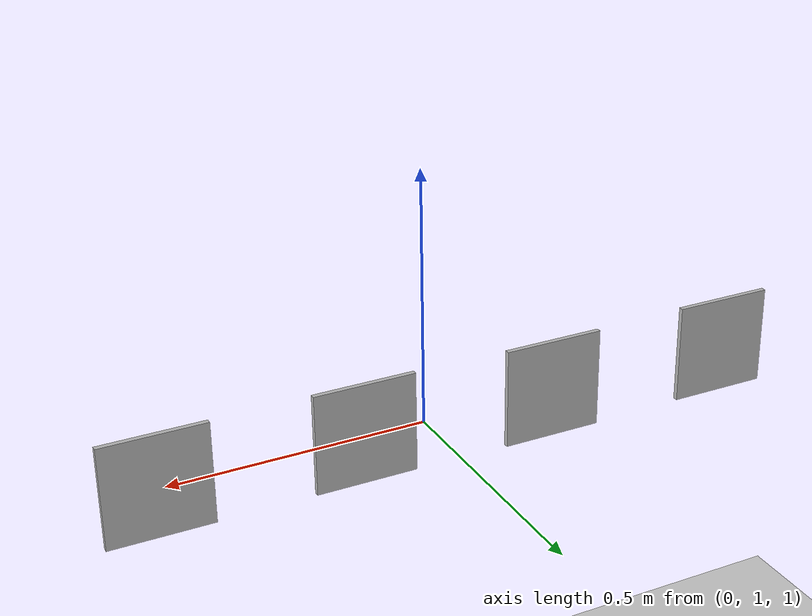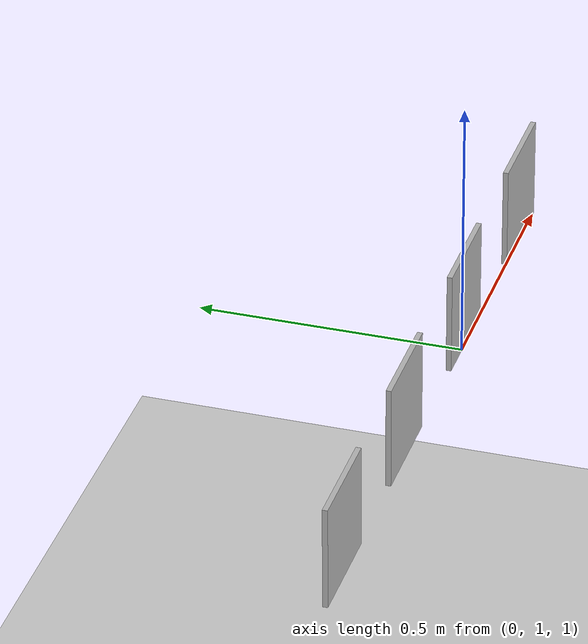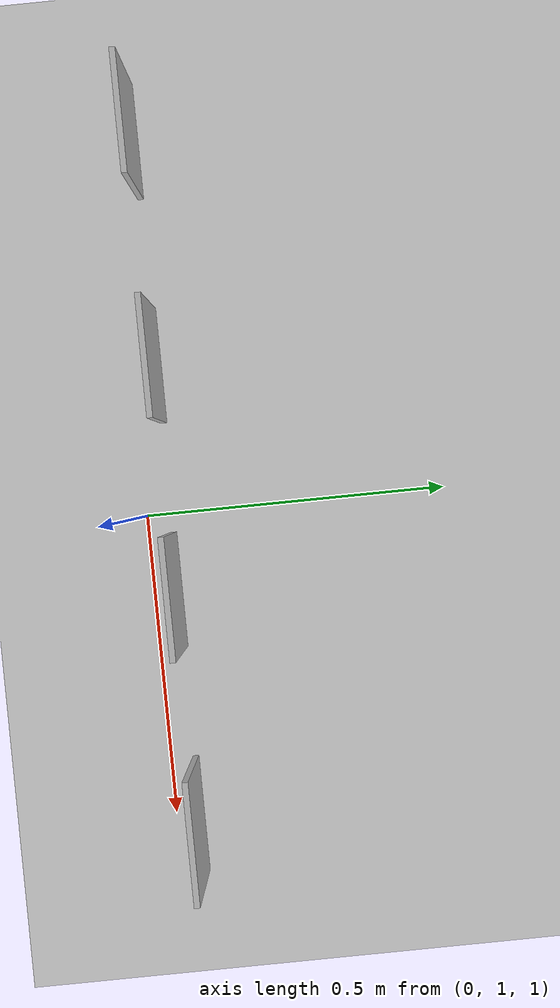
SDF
<sdf version="1.6">
 <world name="default">
  <light name="sun" type="directional">
   <pose>0 0 10 0 -0 0</pose>
   <diffuse>0.8 0.8 0.8 1</diffuse>
   <specular>0.2 0.2 0.2 1</specular>
   <attenuation>
    <range>1000</range>
    <constant>0.9</constant>
    <linear>0.01</linear>
    <quadratic>0.001</quadratic>
   </attenuation>
   <direction>-0.5 0.1 -0.9</direction>
  </light>
  <model name="ground_plane">
   <static>1</static>
   <link name="link">
    <collision name="collision">
     <geometry><plane><normal>0 0 1</normal><size>100 100</size></plane></geometry>
     <surface>
      <contact><collide_bitmask>65535</collide_bitmask></contact>
      <friction><ode><mu>100</mu><mu2>50</mu2></ode></friction>
     </surface>
    </collision>
    <visual name="visual">
     <cast_shadows>0</cast_shadows>
     <geometry><plane><normal>0 0 1</normal><size>100 100</size></plane></geometry>
     <material>
      <script><uri>file://media/materials/scripts/gazebo.material</uri><name>Gazebo/Grey</name></script>
     </material>
    </visual>
   </link>
  </model>
  <gravity>0 0 -9.8</gravity>
  <magnetic_field>6e-06 2.3e-05 -4.2e-05</magnetic_field>
  <atmosphere type="adiabatic"/>
  <physics name="default_physics" default="0" type="ode">
   <max_step_size>0.001</max_step_size>
   <real_time_factor>1</real_time_factor>
   <real_time_update_rate>1000</real_time_update_rate>
  </physics>
  <scene><ambient>0.4 0.4 0.4 1</ambient><background>0.7 0.7 0.7 1</background><shadows>1</shadows></scene>
  <audio><device>default</device></audio>
  <spherical_coordinates>
   <surface_model>EARTH_WGS84</surface_model>
   <latitude_deg>0</latitude_deg>
   <longitude_deg>0</longitude_deg>
   <elevation>0</elevation>
   <heading_deg>0</heading_deg>
  </spherical_coordinates>
  <model name="ar_tag_1">
   <static>1</static>
   <link name="link">
    <visual name="visual">
     <geometry><box><size>0.2 0.01 0.2</size></box></geometry>
     <material>
      <script>
       <uri>model://ar_tag/materials</uri>
       <uri>model://ar_tag/textures</uri>
       <name>ar_tag/tag_1</name>
      </script>
     </material>
    </visual>
    <collision name="collision"><geometry><box><size>0.2 0.01 0.2</size></box></geometry></collision>
   </link>
   <pose>-0.256714 1.03493 1.02544 0 -0 0</pose>
  </model>
  <model name="ar_tag_2">
   <static>1</static>
   <link name="link">
    <visual name="visual">
     <geometry><box><size>0.2 0.01 0.2</size></box></geometry>
     <material>
      <script>
       <uri>model://ar_tag/materials</uri>
       <uri>model://ar_tag/textures</uri>
       <name>ar_tag/tag_2</name>
      </script>
     </material>
    </visual>
    <collision name="collision"><geometry><box><size>0.2 0.01 0.2</size></box></geometry></collision>
   </link>
   <pose>0.133218 1.03335 1.02805 0 -0 0</pose>
  </model>
  <model name="ar_tag_3">
   <static>1</static>
   <link name="link">
    <visual name="visual">
     <geometry><box><size>0.2 0.01 0.2</size></box></geometry>
     <material>
      <script>
       <uri>model://ar_tag/materials</uri>
       <uri>model://ar_tag/textures</uri>
       <name>ar_tag/tag_3</name>
      </script>
     </material>
    </visual>
    <collision name="collision"><geometry><box><size>0.2 0.01 0.2</size></box></geometry></collision>
   </link>
   <pose>0.523150 1.03335 1.02805 0 -0 0</pose>
  </model>
  <model name="ar_tag_4">
   <static>1</static>
   <link name="link">
    <visual name="visual">
     <geometry><box><size>0.2 0.01 0.2</size></box></geometry>
     <material>
      <script>
       <uri>model://ar_tag/materials</uri>
       <uri>model://ar_tag/textures</uri>
       <name>ar_tag/tag_4</name>
      </script>
     </material>
    </visual>
    <collision name="collision"><geometry><box><size>0.2 0.01 0.2</size></box></geometry></collision>
   </link>
   <pose>-0.646646 1.03335 1.02805 0 -0 0</pose>
  </model>
 </world>
</sdf>
